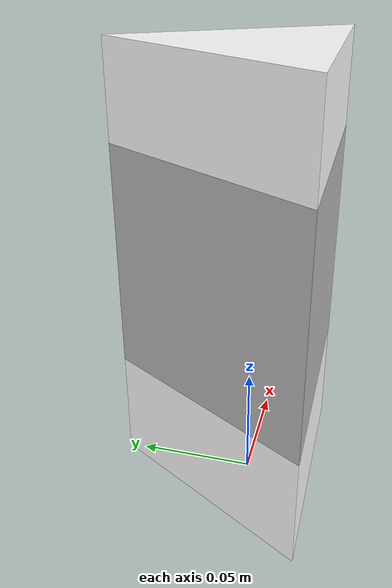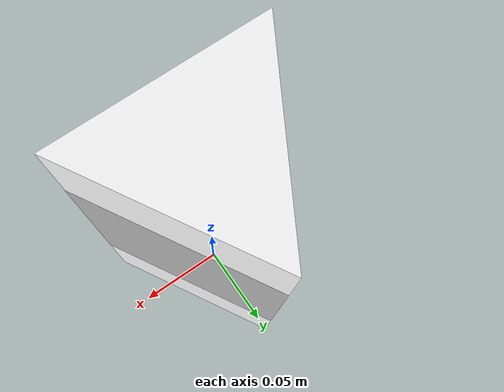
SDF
<?xml version="1.0" ?>
<sdf version="1.5">
    <model name='triangular_prism_stop'>
        <static>1</static>
        <link name='link'>
            <collision name='collision'>
            <geometry>
                <mesh>
                <uri>model://triangular_prism/meshes/triangular_prism.dae</uri>
                <scale>1 1 1</scale>
                </mesh>
            </geometry>
            <max_contacts>10</max_contacts>
            <surface>
                <contact>
                <ode/>
                </contact>
                <bounce/>
                <friction>
                <ode/>
                </friction>
            </surface>
            </collision>

            <visual name='visual_prism'>
                <cast_shadows>0</cast_shadows>
                <geometry>
                    <mesh>
                    <uri>model://triangular_prism/meshes/triangular_prism.dae</uri>
                    <scale>1 1 1</scale>
                    </mesh>
                </geometry>
            </visual>

            <visual name="visual_traffic">
                <pose>0 0 0 0 -0 0</pose>
                <cast_shadows>0</cast_shadows>
                <geometry>
                    <mesh>
                    <uri>model://stop_sign_prism/meshes/signal_stop.dae</uri>
                    <scale>1 1 1</scale>
                    </mesh>
                </geometry>
            </visual>

            <visual name="visual_traffic_2">
                <pose>0 0 0 0 -0 2.0944</pose>
                <cast_shadows>0</cast_shadows>
                <geometry>
                    <mesh>
                    <uri>model://stop_sign_prism/meshes/signal_stop.dae</uri>
                    <scale>1 1 1</scale>
                    </mesh>
                </geometry>
            </visual>

            <visual name="visual_traffic_3">
                <pose>0 0 0 0 0 -2.0944</pose>
                <cast_shadows>0</cast_shadows>
                <geometry>
                    <mesh>
                    <uri>model://stop_sign_prism/meshes/signal_stop.dae</uri>
                    <scale>1 1 1</scale>
                    </mesh>
                </geometry>
            </visual>

            <self_collide>0</self_collide>
            <kinematic>0</kinematic>
            <gravity>1</gravity>
        </link>
        <pose>0 0 0 0 -0 0</pose>
    </model>
</sdf>
